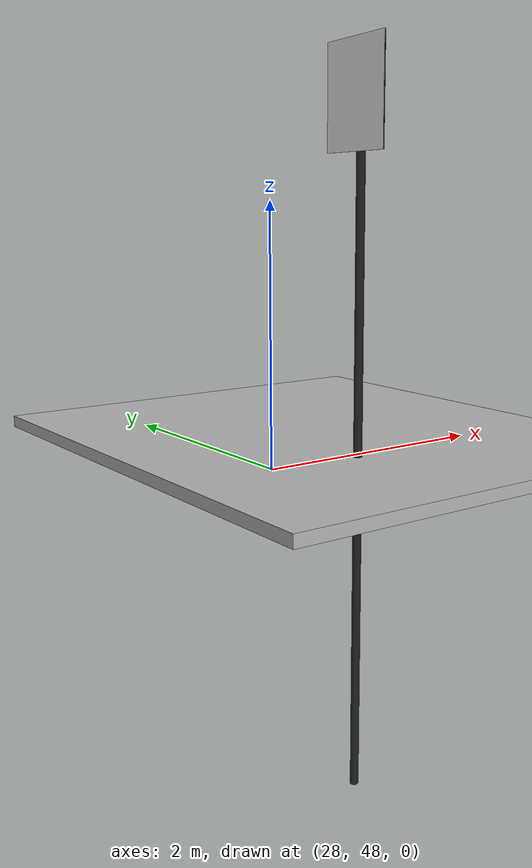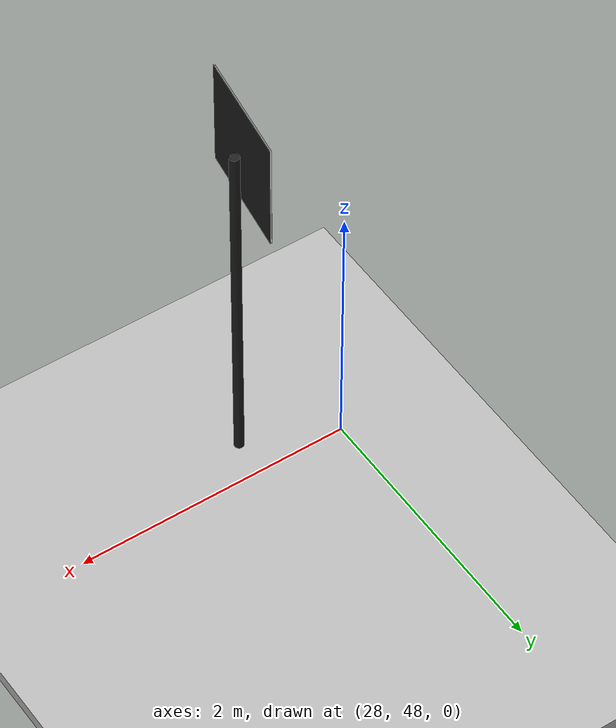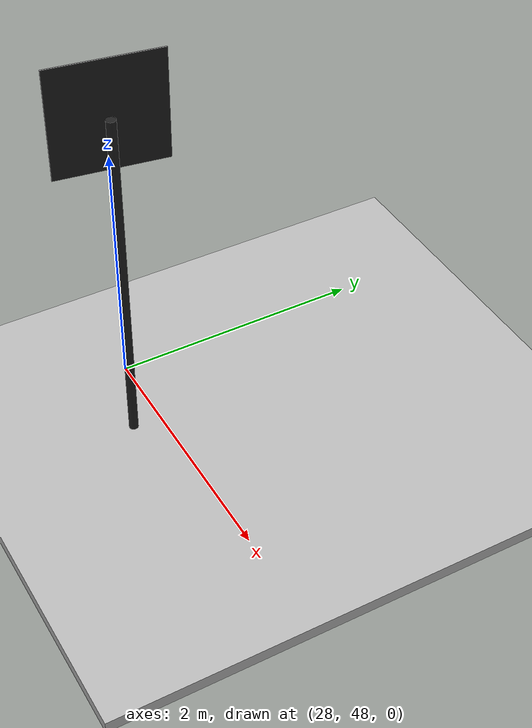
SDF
<sdf version="1.7">
 <world name="default">
  <model name="stopsign">
   <link name="link_3">
    <pose>0.1 0 2.75 0 -1.5707 0</pose>
    <inertial>
     <inertia><ixx>0</ixx><ixy>0</ixy><ixz>0</ixz><iyy>0</iyy><iyz>0</iyz><izz>0</izz></inertia>
     <mass>0</mass>
    </inertial>
    <visual name="visual">
     <pose>0 0 0 0 1.5707 0</pose>
     <geometry><box><size>0.001 0.8 0.8</size></box></geometry>
     <material>
      <script><uri>file://media/materials/scripts/turn_right.material</uri><name>stop/material</name></script>
      <shader type="pixel"><normal_map>__default__</normal_map></shader>
      <ambient>1 1 1 1</ambient>
      <diffuse>1 1 1 1</diffuse>
      <specular>0.03 0.03 0.03 1</specular>
      <emissive>0 0 0 1</emissive>
      <lighting>0</lighting>
     </material>
    </visual>
    <collision name="collision">
     <geometry><box><size>0.001 0.8 0.8</size></box></geometry>
     <surface>
      <friction>
       <ode><mu>1</mu><mu2>1</mu2><fdir1>0 0 0</fdir1><slip1>0</slip1><slip2>0</slip2></ode>
       <torsional>
        <coefficient>1</coefficient>
        <patch_radius>0</patch_radius>
        <surface_radius>0</surface_radius>
        <use_patch_radius>1</use_patch_radius>
        <ode><slip>0</slip></ode>
       </torsional>
      </friction>
      <bounce><restitution_coefficient>0</restitution_coefficient><threshold>1e+06</threshold></bounce>
      <contact>
       <collide_without_contact>0</collide_without_contact>
       <collide_without_contact_bitmask>1</collide_without_contact_bitmask>
       <collide_bitmask>1</collide_bitmask>
       <ode>
        <soft_cfm>0</soft_cfm>
        <soft_erp>0.2</soft_erp>
        <kp>1e+13</kp>
        <kd>1</kd>
        <max_vel>0.01</max_vel>
        <min_depth>0</min_depth>
       </ode>
       <bullet>
        <split_impulse>1</split_impulse>
        <split_impulse_penetration_threshold>-0.01</split_impulse_penetration_threshold>
        <soft_cfm>0</soft_cfm>
        <soft_erp>0.2</soft_erp>
        <kp>1e+13</kp>
        <kd>1</kd>
       </bullet>
      </contact>
     </surface>
    </collision>
   </link>
   <link name="link_0">
    <inertial>
     <mass>0.0276171</mass>
     <inertia>
      <ixx>0.0566012</ixx>
      <ixy>0</ixy>
      <ixz>0</ixz>
      <iyy>0.0566012</iyy>
      <iyz>0</iyz>
      <izz>1.919e-05</izz>
     </inertia>
    </inertial>
    <pose>0.16 0 0 0 -0 0</pose>
    <visual name="visual">
     <geometry><cylinder><radius>0.035</radius><length>5.5</length></cylinder></geometry>
     <material>
      <lighting>1</lighting>
      <script><uri>file://media/materials/scripts/gazebo.material</uri><name>Gazebo/Black</name></script>
      <shader type="pixel"><normal_map>__default__</normal_map></shader>
      <emissive>0 0 0 1</emissive>
      <ambient>0.3 0.3 0.3 1</ambient>
      <diffuse>0.7 0.7 0.7 1</diffuse>
      <specular>0.01 0.01 0.01 1</specular>
     </material>
    </visual>
    <collision name="collision">
     <geometry><cylinder><radius>0.037282</radius><length>4.95881</length></cylinder></geometry>
     <surface>
      <friction>
       <ode><mu>1</mu><mu2>1</mu2><fdir1>0 0 0</fdir1><slip1>0</slip1><slip2>0</slip2></ode>
       <torsional>
        <coefficient>1</coefficient>
        <patch_radius>0</patch_radius>
        <surface_radius>0</surface_radius>
        <use_patch_radius>1</use_patch_radius>
        <ode><slip>0</slip></ode>
       </torsional>
      </friction>
      <bounce><restitution_coefficient>0</restitution_coefficient><threshold>1e+06</threshold></bounce>
      <contact>
       <collide_without_contact>0</collide_without_contact>
       <collide_without_contact_bitmask>1</collide_without_contact_bitmask>
       <collide_bitmask>1</collide_bitmask>
       <ode>
        <soft_cfm>0</soft_cfm>
        <soft_erp>0.2</soft_erp>
        <kp>1e+13</kp>
        <kd>1</kd>
        <max_vel>0.01</max_vel>
        <min_depth>0</min_depth>
       </ode>
       <bullet>
        <split_impulse>1</split_impulse>
        <split_impulse_penetration_threshold>-0.01</split_impulse_penetration_threshold>
        <soft_cfm>0</soft_cfm>
        <soft_erp>0.2</soft_erp>
        <kp>1e+13</kp>
        <kd>1</kd>
       </bullet>
      </contact>
     </surface>
    </collision>
   </link>
   <link name="link_3_clone">
    <pose>0.110001 0 2.75 0 -1.5707 0</pose>
    <inertial>
     <inertia><ixx>0</ixx><ixy>0</ixy><ixz>0</ixz><iyy>0</iyy><iyz>0</iyz><izz>0</izz></inertia>
     <mass>0</mass>
    </inertial>
    <visual name="visual">
     <pose>0 0 0 0 1.5707 0</pose>
     <geometry><box><size>0.001 0.8 0.8</size></box></geometry>
     <material>
      <script><uri>file://media/materials/scripts/turn_right.material</uri><name>Gazebo/Black</name></script>
      <shader type="pixel"><normal_map>__default__</normal_map></shader>
      <ambient>1 1 1 1</ambient>
      <diffuse>1 1 1 1</diffuse>
      <specular>0.03 0.03 0.03 1</specular>
      <emissive>0 0 0 1</emissive>
      <lighting>0</lighting>
     </material>
    </visual>
    <collision name="collision">
     <geometry><box><size>0.001 0.8 0.8</size></box></geometry>
     <surface>
      <friction>
       <ode><mu>1</mu><mu2>1</mu2><fdir1>0 0 0</fdir1><slip1>0</slip1><slip2>0</slip2></ode>
       <torsional>
        <coefficient>1</coefficient>
        <patch_radius>0</patch_radius>
        <surface_radius>0</surface_radius>
        <use_patch_radius>1</use_patch_radius>
        <ode><slip>0</slip></ode>
       </torsional>
      </friction>
      <bounce><restitution_coefficient>0</restitution_coefficient><threshold>1e+06</threshold></bounce>
      <contact>
       <collide_without_contact>0</collide_without_contact>
       <collide_without_contact_bitmask>1</collide_without_contact_bitmask>
       <collide_bitmask>1</collide_bitmask>
       <ode>
        <soft_cfm>0</soft_cfm>
        <soft_erp>0.2</soft_erp>
        <kp>1e+13</kp>
        <kd>1</kd>
        <max_vel>0.01</max_vel>
        <min_depth>0</min_depth>
       </ode>
       <bullet>
        <split_impulse>1</split_impulse>
        <split_impulse_penetration_threshold>-0.01</split_impulse_penetration_threshold>
        <soft_cfm>0</soft_cfm>
        <soft_erp>0.2</soft_erp>
        <kp>1e+13</kp>
        <kd>1</kd>
       </bullet>
      </contact>
     </surface>
    </collision>
   </link>
   <joint name="link_0_JOINT_0" type="revolute">
    <parent>link_0</parent>
    <child>link_3</child>
    <axis>
     <xyz>1 0 0</xyz>
     <limit>
      <lower>-1.79769e+308</lower>
      <upper>1.79769e+308</upper>
      <effort>-1</effort>
      <velocity>-1</velocity>
     </limit>
     <dynamics>
      <spring_reference>0</spring_reference>
      <spring_stiffness>0</spring_stiffness>
      <damping>0</damping>
      <friction>0</friction>
     </dynamics>
    </axis>
    <physics>
     <ode><limit><cfm>0</cfm><erp>0.2</erp></limit><suspension><cfm>0</cfm><erp>0.2</erp></suspension></ode>
    </physics>
   </joint>
   <joint name="link_0_JOINT_1" type="revolute">
    <parent>link_0</parent>
    <child>link_3_clone</child>
    <axis>
     <xyz>1 0 0</xyz>
     <limit>
      <lower>-1.79769e+308</lower>
      <upper>1.79769e+308</upper>
      <effort>-1</effort>
      <velocity>-1</velocity>
     </limit>
     <dynamics>
      <spring_reference>0</spring_reference>
      <spring_stiffness>0</spring_stiffness>
      <damping>0</damping>
      <friction>0</friction>
     </dynamics>
    </axis>
    <physics>
     <ode><limit><cfm>0</cfm><erp>0.2</erp></limit><suspension><cfm>0</cfm><erp>0.2</erp></suspension></ode>
    </physics>
   </joint>
   <joint name="link_3_JOINT_0" type="revolute">
    <parent>link_3</parent>
    <child>link_3_clone</child>
    <axis>
     <xyz>1 0 0</xyz>
     <limit>
      <lower>-1.79769e+308</lower>
      <upper>1.79769e+308</upper>
      <effort>-1</effort>
      <velocity>-1</velocity>
     </limit>
     <dynamics>
      <spring_reference>0</spring_reference>
      <spring_stiffness>0</spring_stiffness>
      <damping>0</damping>
      <friction>0</friction>
     </dynamics>
    </axis>
    <physics>
     <ode><limit><cfm>0</cfm><erp>0.2</erp></limit><suspension><cfm>0</cfm><erp>0.2</erp></suspension></ode>
    </physics>
   </joint>
   <static>1</static>
   <pose>28.491 47.7883 0 0 0 -0.15098</pose>
  </model>
  <model name="ground">
   <link name="ground">
    <inertial>
     <mass>1</mass>
     <inertia><ixx>1</ixx><ixy>0</ixy><ixz>0</ixz><iyy>1</iyy><iyz>0</iyz><izz>1</izz></inertia>
    </inertial>
    <visual name="visual">
     <geometry><box><size>56.5 45.2 0.1</size></box></geometry>
     <material>
      <script><uri>file://media/materials/scripts/map.material</uri><name>map/material</name></script>
      <shader type="pixel"><normal_map>__default__</normal_map></shader>
      <lighting>0</lighting>
     </material>
    </visual>
    <collision name="collision">
     <geometry><box><size>56.5 45.2 0.1</size></box></geometry>
     <surface>
      <friction>
       <ode><mu>1</mu><mu2>1</mu2><fdir1>0 0 0</fdir1><slip1>0</slip1><slip2>0</slip2></ode>
       <torsional>
        <coefficient>1</coefficient>
        <patch_radius>0</patch_radius>
        <surface_radius>0</surface_radius>
        <use_patch_radius>1</use_patch_radius>
        <ode><slip>0</slip></ode>
       </torsional>
      </friction>
      <bounce><restitution_coefficient>0</restitution_coefficient><threshold>1e+06</threshold></bounce>
      <contact>
       <collide_without_contact>0</collide_without_contact>
       <collide_without_contact_bitmask>1</collide_without_contact_bitmask>
       <collide_bitmask>1</collide_bitmask>
       <ode>
        <soft_cfm>0</soft_cfm>
        <soft_erp>0.2</soft_erp>
        <kp>1e+13</kp>
        <kd>1</kd>
        <max_vel>0.01</max_vel>
        <min_depth>0</min_depth>
       </ode>
       <bullet>
        <split_impulse>1</split_impulse>
        <split_impulse_penetration_threshold>-0.01</split_impulse_penetration_threshold>
        <soft_cfm>0</soft_cfm>
        <soft_erp>0.2</soft_erp>
        <kp>1e+13</kp>
        <kd>1</kd>
       </bullet>
      </contact>
     </surface>
    </collision>
   </link>
   <static>1</static>
   <pose>19 24.5 0 0 -0 1.5707</pose>
  </model>
 </world>
</sdf>
